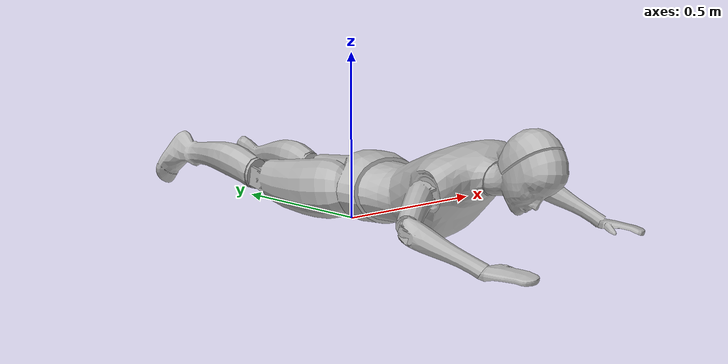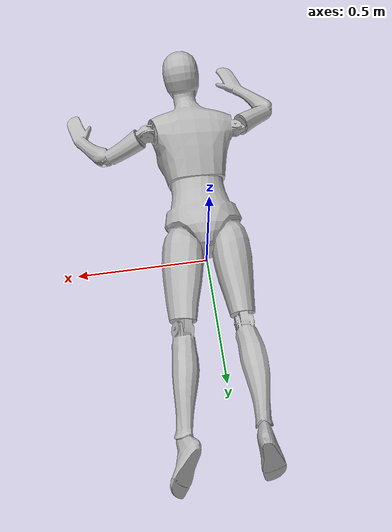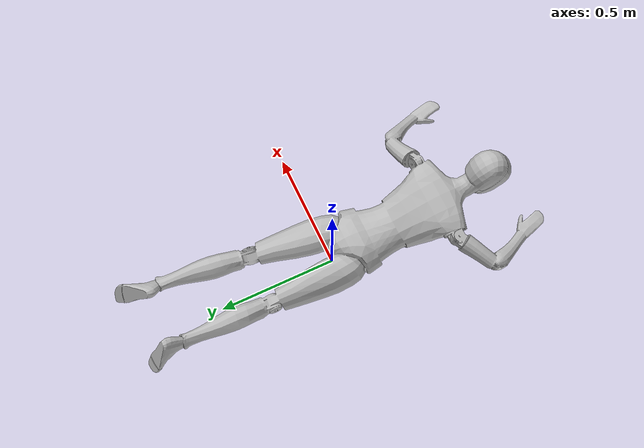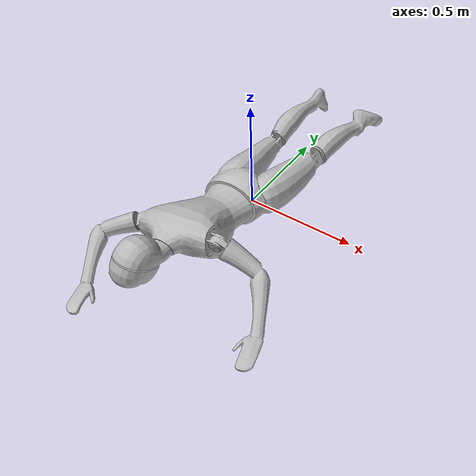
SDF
<?xml version='1.0' ?>
<sdf version='1.6'>
  <model name='Survivor Female'>
    <static>true</static>
    <link name='link'>
      <collision name='collision'>
        <geometry>
          <mesh>
            <uri>model://Survivor Female/meshes/Survivor Female.dae</uri>
          </mesh>
        </geometry>
      </collision>
      <visual name='visual'>
        <geometry>
          <mesh>
            <uri>model://Survivor Female/meshes/Survivor Female.dae</uri>
          </mesh>
        </geometry>
      </visual>
    </link>
  </model>
</sdf>
